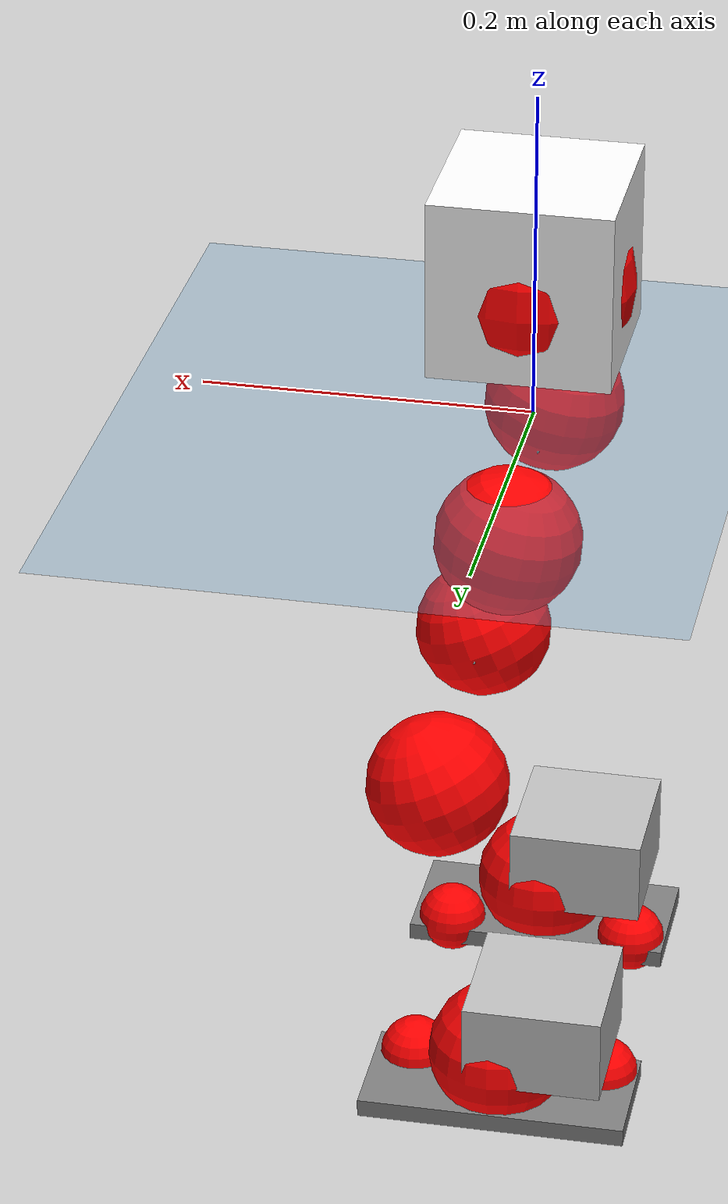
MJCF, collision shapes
<mujoco model="pi_12dof_release_v1">
  <compiler angle="radian" assetdir="assets" balanceinertia="true" inertiafromgeom="false"/>

  <option timestep="0.005" density="1.2" viscosity="2e-05"/>

  <size nkey="1"/>

  <visual>
    <quality shadowsize="8192"/>
    <map shadowclip="0.5"/>
  </visual>

  <default>
    <default class="/">
      <joint armature="0.01" damping="0.01" frictionloss="0.01"/>
      <geom contype="0" conaffinity="0" group="1" solref="-1000 -80"/>
      <site size="0.01 0.005 0.005" group="5"/>
      <general forcelimited="true" biastype="affine" gainprm="20" biasprm="0 -20 -0.5"/>
      <default class="foot">
        <geom size="0.0845 0.036 0.005" type="box" condim="6" group="4" priority="1" friction="0.9 0.2 0.2" solimp="0.015 1 0.005"/>
      </default>
      <default class="reward_collision_sphere">
        <geom group="5" rgba="1 0 0 1"/>
      </default>
    </default>
  </default>

  <asset>
    <texture type="skybox" colorspace="auto" name="//unnamed_texture_0" builtin="gradient" rgb1="0.95 0.95 0.95" rgb2="0.95 0.95 0.95" width="100" height="600"/>
    <texture type="2d" colorspace="auto" name="texplane" builtin="checker" rgb1="0.345 0.575 0.748" rgb2="0.345 0.575 0.748" markrgb="1 1 1" width="512" height="512"/>
    <material name="MatPlane" class="/" texture="texplane" texuniform="true" texrepeat="2 2" specular="0.9"/>
    <mesh name="baselink_1" class="/" file="baselink_1.STL"/>
    <mesh name="r_hip_pitch_link" class="/" file="r_hip_pitch_link.STL"/>
    <mesh name="r_hip_roll_link" class="/" file="r_hip_roll_link.STL"/>
    <mesh name="r_thigh_link" class="/" file="r_thigh_link.STL"/>
    <mesh name="r_calf_link" class="/" file="r_calf_link.STL"/>
    <mesh name="r_ankle_pitch_link" class="/" file="r_ankle_pitch_link.STL"/>
    <mesh name="r_ankle_roll_link" class="/" file="r_ankle_roll_link.STL"/>
    <mesh name="l_hip_pitch_link" class="/" file="l_hip_pitch_link.STL"/>
    <mesh name="l_hip_roll_link" class="/" file="l_hip_roll_link.STL"/>
    <mesh name="l_thigh_link" class="/" file="l_thigh_link.STL"/>
    <mesh name="l_calf_link" class="/" file="l_calf_link.STL"/>
    <mesh name="l_ankle_pitch_link" class="/" file="l_ankle_pitch_link.STL"/>
    <mesh name="l_ankle_roll_link" class="/" file="l_ankle_roll_link.STL"/>
  </asset>

  <worldbody>
    <geom name="floor" class="/" size="100 100 0.125" type="plane" group="0" material="MatPlane"/>
    <light name="toplight_shadow" class="/" pos="0 0 5" dir="0.0990148 0.0990148 -0.990148" type="directional" ambient="0.04 0.04 0.04" diffuse="0.55 0.55 0.55" specular="0.12 0.12 0.12"/>
    <light name="toplight_fill" class="/" pos="0 0 5" dir="0.0990148 0.0990148 -0.990148" type="directional" castshadow="false" ambient="0.04 0.04 0.04" diffuse="0.3 0.3 0.3" specular="0.08 0.08 0.08"/>
    <body name="trunk" pos="0.000468862 6.55227e-05 0.000632383" quat="1 -1.28628e-05 1.79877e-06 1.51297e-06">
      <inertial pos="0.00493786 0.000579761 0.0496459" quat="0.701914 0.00164999 0.0248107 0.711828" mass="2.75639" diaginertia="0.00481615 0.0177074 0.01154"/>
      <joint name="//unnamed_joint_0" type="free"/>
      <geom name="//unnamed_geom_1" class="/" type="mesh" density="0" rgba="1 1 1 1" mesh="baselink_1"/>
      <geom name="//unnamed_geom_2" class="/" size="0.054128 0.054128 0.054128" pos="0 0 0.098072" type="box" rgba="1 1 1 1"/>
      <geom name="//unnamed_geom_3" class="reward_collision_sphere" size="0.0595408" pos="0 0 0.085813"/>
      <site name="imu" class="/" pos="0.000915499 0.00854562 0.00026473" size="0.0108256"/>
      <camera name="track" class="/" pos="0 -2.29941 0" quat="0.707107 0.707107 0 0" mode="trackcom"/>
      <camera name="ego_camera" class="/" pos="0.0654057 0 0.220662" quat="-0.5 -0.5 0.5 0.5"/>
      <body name="r_hip_pitch_link" pos="0.0017779 -0.0302756 -0.042697" quat="0.992176 -9.29711e-05 -0.124848 -6.34645e-05">
        <inertial pos="0.000174902 -0.0632751 0.00195579" quat="-0.017677 0.708978 -0.0295742 0.704388" mass="0.47384" diaginertia="5.48285e-05 0.000201805 0.000226975"/>
        <joint name="r_hip_pitch_joint" class="/" pos="0 0 0" axis="-0.00331066 -0.999941 -0.0103453" stiffness="0.000342782" range="-1.75685 1.21288" armature="0.0103995" damping="0.0133611" frictionloss="0.00948483"/>
        <geom name="//unnamed_geom_4" class="/" type="mesh" density="0" rgba="0.75294 0.75294 0.75294 1" mesh="r_hip_pitch_link"/>
        <geom name="//unnamed_geom_5" class="/" size="0.00054128 0.00054128 0.00054128" type="box" rgba="0.75294 0.75294 0.75294 1"/>
        <body name="r_hip_roll_link" pos="0.00206783 -0.0688363 -6.48485e-05" quat="1 -9.15955e-05 5.95919e-05 0.000260312">
          <inertial pos="-0.000850748 0.0017825 -0.0736454" quat="0.703147 -0.0810219 -0.0868399 0.701056" mass="0.493891" diaginertia="0.000169778 0.000560172 0.00034299"/>
          <joint name="r_hip_roll_joint" class="/" pos="0 0 0" axis="-0.999984 0.00199471 -0.00533645" range="-0.104774 0.484913" armature="0.0102527" damping="0.0410284" frictionloss="0.0107632"/>
          <geom name="//unnamed_geom_6" class="/" type="mesh" density="0" rgba="0.75294 0.75294 0.75294 1" mesh="r_hip_roll_link"/>
          <geom name="//unnamed_geom_7" class="/" size="0.00054128 0.00054128 0.00054128" type="box" rgba="0.75294 0.75294 0.75294 1"/>
          <geom name="//unnamed_geom_8" class="reward_collision_sphere" size="0.0433024"/>
          <body name="r_thigh_link" pos="-0.00182449 0.00211271 -0.0856125" quat="1 6.6272e-05 -0.000404772 -0.000820262">
            <inertial pos="0.00119716 0.0014049 -0.0550827" quat="0.737879 0.67493 0.000795426 0.00167359" mass="0.139753" diaginertia="6.2511e-05 0.000182907 0.000164764"/>
            <joint name="r_thigh_joint" class="/" pos="0 0 0" axis="0.00144751 0.00119911 -0.999998" range="-0.315288 0.600564" armature="0.00946184" damping="0.00483662" frictionloss="0.0103541"/>
            <geom name="//unnamed_geom_9" class="/" type="mesh" density="0" rgba="0.75294 0.75294 0.75294 1" mesh="r_thigh_link"/>
            <geom name="//unnamed_geom_10" class="/" size="0.00054128 0.00054128 0.00054128" type="box" rgba="0.75294 0.75294 0.75294 1"/>
            <body name="r_calf_link" pos="0.00249076 -0.00506965 -0.0876461" quat="0.947684 -9.40138e-06 0.31921 -4.76182e-05">
              <inertial pos="-0.00311554 0.00131537 -0.0832461" quat="0.999984 -0.00312093 0.000200127 0.00480597" mass="1.05549" diaginertia="0.00172844 0.00742103 0.000484345"/>
              <joint name="r_calf_joint" class="/" pos="0 0 0" axis="-0.00151171 -0.99997 0.00762537" range="-1.72697 0.687233" armature="0.00947925" damping="0.0106858" frictionloss="0.0119709"/>
              <geom name="//unnamed_geom_11" class="/" type="mesh" density="0" rgba="0.75294 0.75294 0.75294 1" mesh="r_calf_link"/>
              <geom name="//unnamed_geom_12" class="/" size="0.00054128 0.00054128 0.00054128" type="box" rgba="0.75294 0.75294 0.75294 1"/>
              <geom name="//unnamed_geom_13" class="reward_collision_sphere" size="0.0433024"/>
              <body name="r_ankle_pitch_link" pos="-0.00209304 -0.0034287 -0.169796" quat="0.980059 0.000919641 -0.198706 -0.000463324">
                <inertial pos="0.00206093 0.00746368 -0.000713043" quat="-0.00157163 0.702741 -0.000866248 0.711444" mass="0.222885" diaginertia="0.000154656 0.000442244 0.000318285"/>
                <joint name="r_ankle_pitch_joint" class="/" pos="0 0 0" axis="-0.0113444 -0.999928 0.00393139" stiffness="0.00562146" range="-1.25298 0.456362" armature="0.0107376" damping="0.0135688" frictionloss="0.00941761"/>
                <geom name="//unnamed_geom_14" class="/" type="mesh" density="0" rgba="0.75294 0.75294 0.75294 1" mesh="r_ankle_pitch_link"/>
                <geom name="//unnamed_geom_15" class="/" size="0.0422199 0.0433024 0.027064" type="box" rgba="0.75294 0.75294 0.75294 1"/>
                <body name="r_ankle_roll_link" pos="0.0690943 0.00560533 -0.000671315" quat="1 0.000463751 0.000163226 0.000302083">
                  <inertial pos="-0.0179405 -0.000858384 -0.0169979" quat="0.556217 0.429105 0.433292 0.564579" mass="0.660653" diaginertia="0.000585716 0.00206562 0.000807637"/>
                  <joint name="r_ankle_roll_joint" class="/" pos="0 0 0" axis="-0.999998 -0.000504245 0.00174992" stiffness="0.00795137" range="-0.0907523 0.133622" armature="0.0110561" damping="0" frictionloss="0.00972476"/>
                  <geom name="//unnamed_geom_16" class="/" type="mesh" density="0" rgba="0.75294 0.75294 0.75294 1" mesh="r_ankle_roll_link"/>
                  <geom name="//unnamed_geom_17" class="/" type="mesh" rgba="0.75294 0.75294 0.75294 1" mesh="r_ankle_roll_link"/>
                  <geom name="right_foot" class="foot" size="0.0825574 0.0390784 0.00550734" pos="-0.0444758 0 -0.0539396"/>
                  <geom name="//unnamed_geom_19" class="reward_collision_sphere" size="0.0433024" pos="-0.0436038 0 -0.024518"/>
                  <geom name="//unnamed_geom_20" class="reward_collision_sphere" size="0.0216512" pos="0.0130811 0.0229941 -0.049036"/>
                  <geom name="//unnamed_geom_21" class="reward_collision_sphere" size="0.0216512" pos="-0.104649 0.0229941 -0.049036"/>
                  <site name="right_foot" class="foot" pos="-0.0444758 0 -0.0539396" size="0.0108256"/>
                </body>
              </body>
            </body>
          </body>
        </body>
      </body>
      <body name="l_hip_pitch_link" pos="0.000579279 0.0262982 -0.0392745" quat="0.992258 0.00111524 -0.124189 0.00056173">
        <inertial pos="-0.000343452 0.0631485 0.00184272" quat="-0.0391411 0.696411 0.0320717 0.715856" mass="0.526273" diaginertia="6.67092e-05 0.000217176 0.000289848"/>
        <joint name="l_hip_pitch_joint" class="/" pos="0 0 0" axis="2.9145e-05 0.999999 -0.00134844" range="-1.255 1.7651" armature="0.0108601" damping="0.0112972" frictionloss="0.0113301"/>
        <geom name="//unnamed_geom_22" class="/" type="mesh" density="0" rgba="0.75294 0.75294 0.75294 1" mesh="l_hip_pitch_link"/>
        <geom name="//unnamed_geom_23" class="/" size="0.00054128 0.00054128 0.00054128" type="box" rgba="0.75294 0.75294 0.75294 1"/>
        <body name="l_hip_roll_link" pos="-0.00212438 0.0647365 0.003291" quat="1 0.000358156 0.000371441 -0.000497005">
          <inertial pos="-0.000186701 -0.000686104 -0.0720564" quat="0.693781 -0.0785234 -0.0789533 0.711525" mass="0.485218" diaginertia="0.000168007 0.000593473 0.000364378"/>
          <joint name="l_hip_roll_joint" class="/" pos="0 0 0" axis="-0.999999 0.00136422 -0.000738986" range="-0.453759 0.127567" armature="0.0105267" damping="0.0107178" frictionloss="0.0122295"/>
          <geom name="//unnamed_geom_24" class="/" type="mesh" density="0" rgba="0.75294 0.75294 0.75294 1" mesh="l_hip_roll_link"/>
          <geom name="//unnamed_geom_25" class="/" size="0.00054128 0.00054128 0.00054128" type="box" rgba="0.75294 0.75294 0.75294 1"/>
          <geom name="//unnamed_geom_26" class="reward_collision_sphere" size="0.0433024"/>
          <body name="l_thigh_link" pos="-0.00223218 0.00353175 -0.0842542" quat="1 -0.000288865 0.000531737 0.000770253">
            <inertial pos="0.00066685 -0.00140214 -0.0610371" quat="0.675942 0.736955 8.4382e-05 0.000277103" mass="0.148153" diaginertia="6.32055e-05 0.000193959 0.00016411"/>
            <joint name="l_thigh_joint" class="/" pos="0 0 0" axis="-6.07627e-06 -5.04697e-06 -1" range="-0.573031 0.302421" armature="0.0101701" damping="0.00230949" frictionloss="0.0106687"/>
            <geom name="//unnamed_geom_27" class="/" type="mesh" density="0" rgba="0.75294 0.75294 0.75294 1" mesh="l_thigh_link"/>
            <geom name="//unnamed_geom_28" class="/" size="0.00054128 0.00054128 0.00054128" type="box" rgba="0.75294 0.75294 0.75294 1"/>
            <body name="l_calf_link" pos="-7.14944e-05 0.000615094 -0.0878825" quat="0.947784 -0.000285336 0.318912 -0.000175914">
              <inertial pos="0.0029543 0.00334765 -0.0865162" quat="0.999953 0.00635452 0.00267952 -0.00686763" mass="1.04931" diaginertia="0.00181662 0.00740937 0.000480658"/>
              <joint name="l_calf_joint" class="/" pos="0 0 0" axis="0.00058372 0.999973 -0.00735608" range="-0.602375 1.60263" armature="0.0122126" damping="0.0206467" frictionloss="0.01225"/>
              <geom name="//unnamed_geom_29" class="/" type="mesh" density="0" rgba="0.75294 0.75294 0.75294 1" mesh="l_calf_link"/>
              <geom name="//unnamed_geom_30" class="/" size="0.00054128 0.00054128 0.00054128" type="box" rgba="0.75294 0.75294 0.75294 1"/>
              <geom name="//unnamed_geom_31" class="reward_collision_sphere" size="0.0433024"/>
              <body name="l_ankle_pitch_link" pos="0.00115841 0.000978346 -0.170739" quat="0.980122 -3.96172e-06 -0.198394 0.000795431">
                <inertial pos="0.00392193 0.000623175 0.00168646" quat="-0.00712 0.706734 -0.00822681 0.707396" mass="0.218209" diaginertia="0.000153286 0.000433713 0.0003261"/>
                <joint name="l_ankle_pitch_joint" class="/" pos="0 0 0" axis="-0.00434802 0.999969 -0.00663751" range="-0.500241 1.32766" armature="0.0112951" damping="0.0201287" frictionloss="0.010913"/>
                <geom name="//unnamed_geom_32" class="/" type="mesh" density="0" rgba="0.75294 0.75294 0.75294 1" mesh="l_ankle_pitch_link"/>
                <geom name="//unnamed_geom_33" class="/" size="0.0422199 0.0433024 0.027064" type="box" rgba="0.75294 0.75294 0.75294 1"/>
                <body name="l_ankle_roll_link" pos="0.0697695 0.00468043 -0.000796826" quat="0.999999 -0.000962477 0.00042283 0.000345379">
                  <inertial pos="-0.0246283 -0.000781479 -0.0204745" quat="0.563754 0.421469 0.441772 0.556221" mass="0.649931" diaginertia="0.000551075 0.00198149 0.000796924"/>
                  <joint name="l_ankle_roll_joint" class="/" pos="0 0 0" axis="-0.999863 -0.000380622 -0.0165228" range="-0.215735 0.149145" armature="0.00970425" damping="0" frictionloss="0.0113678"/>
                  <geom name="//unnamed_geom_34" class="/" type="mesh" density="0" rgba="0.75294 0.75294 0.75294 1" mesh="l_ankle_roll_link"/>
                  <geom name="//unnamed_geom_35" class="/" type="mesh" rgba="0.75294 0.75294 0.75294 1" mesh="l_ankle_roll_link"/>
                  <geom name="left_foot" class="foot" size="0.0820952 0.0369998 0.00560902" pos="-0.0444758 0 -0.0539396"/>
                  <geom name="//unnamed_geom_37" class="reward_collision_sphere" size="0.0433024" pos="-0.0436038 0 -0.024518"/>
                  <geom name="//unnamed_geom_38" class="reward_collision_sphere" size="0.0216512" pos="0.0130811 -0.0229941 -0.049036"/>
                  <geom name="//unnamed_geom_39" class="reward_collision_sphere" size="0.0216512" pos="-0.104649 -0.0229941 -0.049036"/>
                  <site name="left_foot" class="foot" pos="-0.0444758 0 -0.0539396" size="0.0108256"/>
                </body>
              </body>
            </body>
          </body>
        </body>
      </body>
    </body>
  </worldbody>

  <contact>
    <pair class="/" geom1="floor" geom2="right_foot" name="//unnamed_contact_1"/>
    <pair class="/" geom1="floor" geom2="left_foot" name="//unnamed_contact_0"/>
  </contact>

  <actuator>
    <general name="r_hip_pitch_joint" class="/" joint="r_hip_pitch_joint" forcerange="-20.6326 20.6326" gainprm="20.8492" biasprm="0 -20.8492 -0.514987"/>
    <general name="r_hip_roll_joint" class="/" joint="r_hip_roll_joint" forcerange="-22.9968 22.9968" gainprm="20.8492" biasprm="0 -20.8492 -0.514987"/>
    <general name="r_thigh_joint" class="/" joint="r_thigh_joint" forcerange="-23.5184 23.5184" gainprm="20.8492" biasprm="0 -20.8492 -0.514987"/>
    <general name="r_calf_joint" class="/" joint="r_calf_joint" forcerange="-23.9051 23.9051" gainprm="20.8492" biasprm="0 -20.8492 -0.514987"/>
    <general name="r_ankle_pitch_joint" class="/" joint="r_ankle_pitch_joint" forcerange="-20.8292 20.8292" gainprm="20.8492" biasprm="0 -20.8492 -0.514987"/>
    <general name="r_ankle_roll_joint" class="/" joint="r_ankle_roll_joint" forcerange="-20.7759 20.7759" gainprm="20.8492" biasprm="0 -20.8492 -0.514987"/>
    <general name="l_hip_pitch_joint" class="/" joint="l_hip_pitch_joint" forcerange="-19.5532 19.5532" gainprm="20.8492" biasprm="0 -20.8492 -0.514987"/>
    <general name="l_hip_roll_joint" class="/" joint="l_hip_roll_joint" forcerange="-21.991 21.991" gainprm="20.8492" biasprm="0 -20.8492 -0.514987"/>
    <general name="l_thigh_joint" class="/" joint="l_thigh_joint" forcerange="-20.4412 20.4412" gainprm="20.8492" biasprm="0 -20.8492 -0.514987"/>
    <general name="l_calf_joint" class="/" joint="l_calf_joint" forcerange="-20.7911 20.7911" gainprm="20.8492" biasprm="0 -20.8492 -0.514987"/>
    <general name="l_ankle_pitch_joint" class="/" joint="l_ankle_pitch_joint" forcerange="-20.7758 20.7758" gainprm="20.8492" biasprm="0 -20.8492 -0.514987"/>
    <general name="l_ankle_roll_joint" class="/" joint="l_ankle_roll_joint" forcerange="-23.6006 23.6006" gainprm="20.8492" biasprm="0 -20.8492 -0.514987"/>
  </actuator>

  <sensor>
    <gyro site="imu" name="imu_angular_velocity"/>
    <velocimeter site="imu" name="imu_linear_velocity"/>
    <framelinvel objtype="site" objname="left_foot" name="left_foot_global_linear_velocity"/>
    <framelinvel objtype="site" objname="right_foot" name="right_foot_global_linear_velocity"/>
  </sensor>

  <keyframe>
    <key name="home" qpos="0 0 0.291 1 0 0 0 0.4 0 0 -0.8 0.4 0 -0.4 0 0 0.8 -0.4 0"/>
  </keyframe>
</mujoco>
